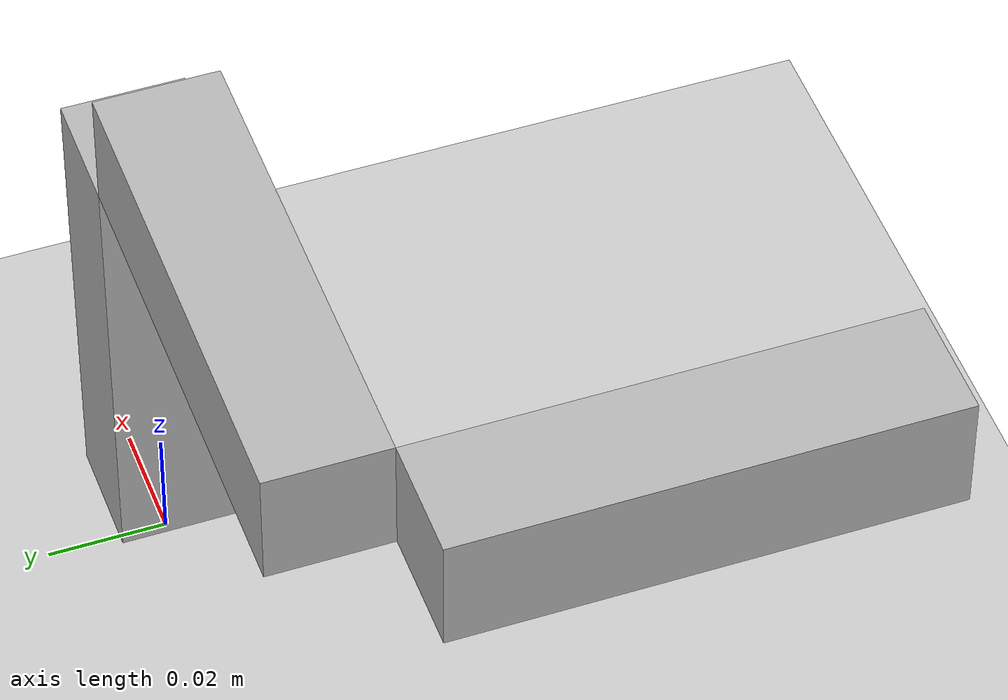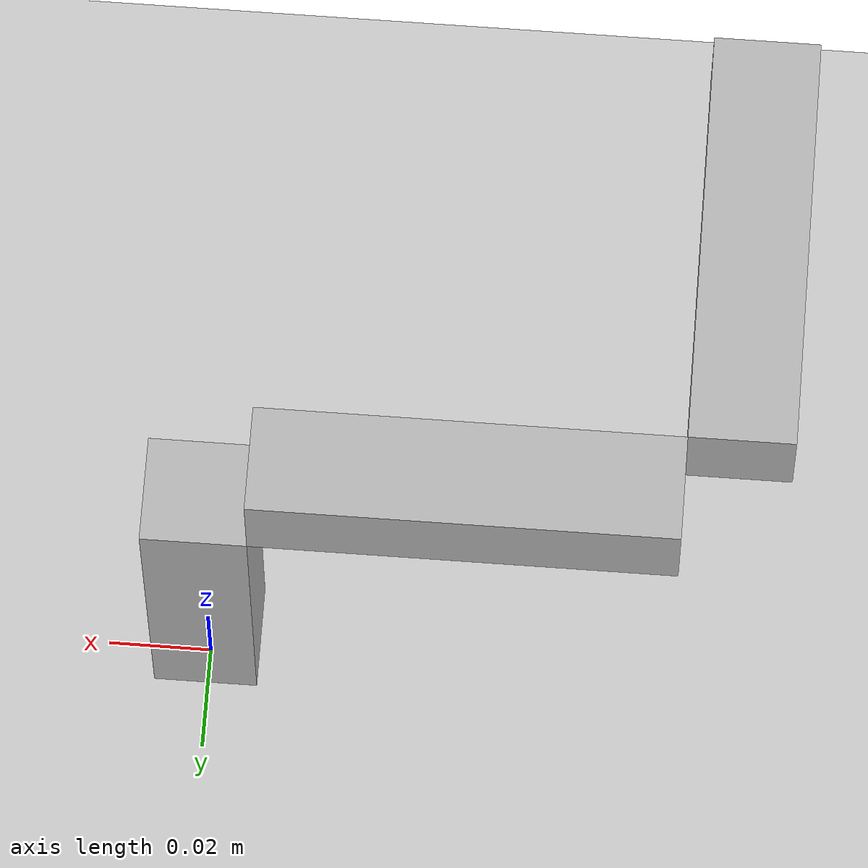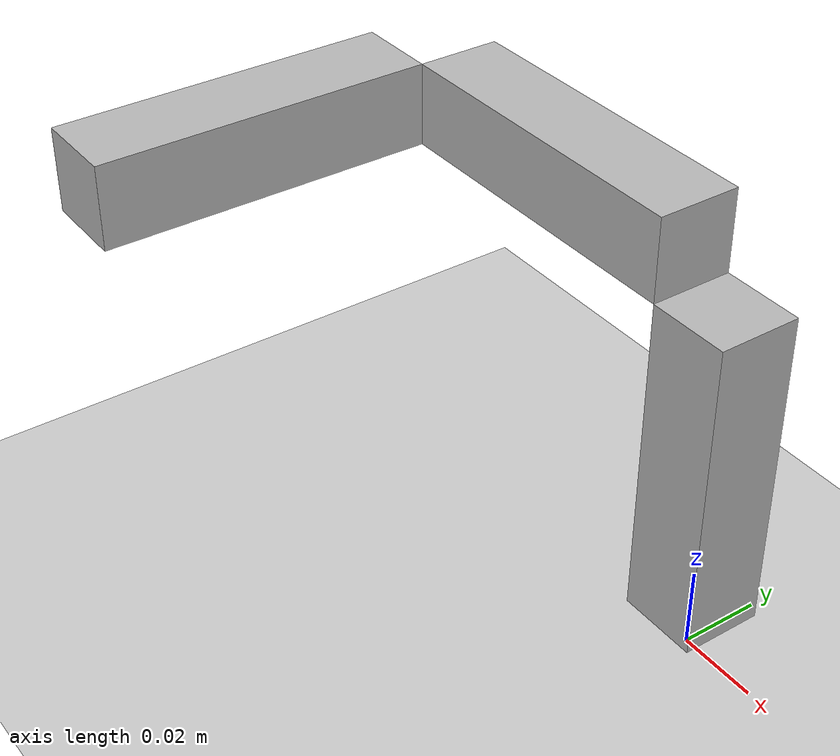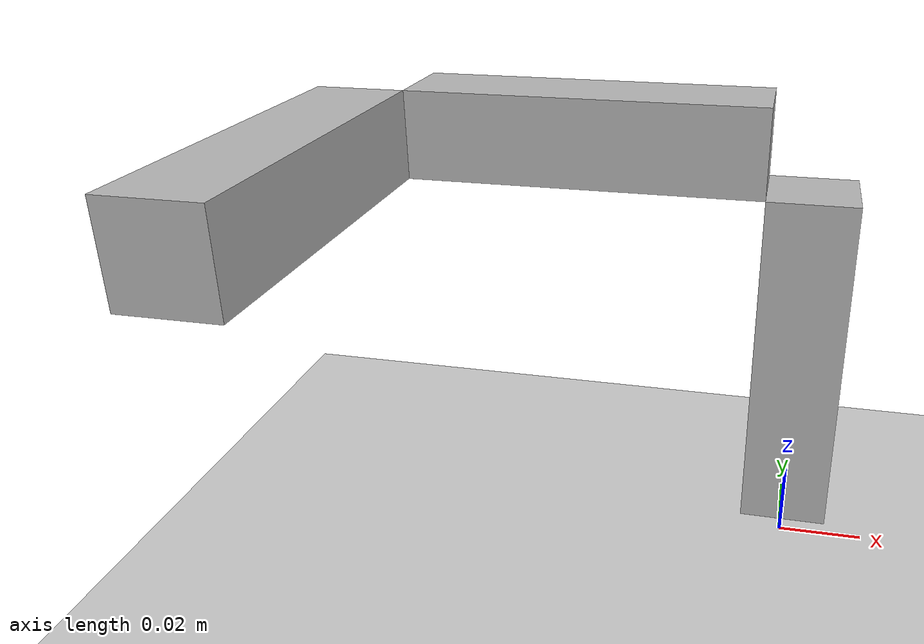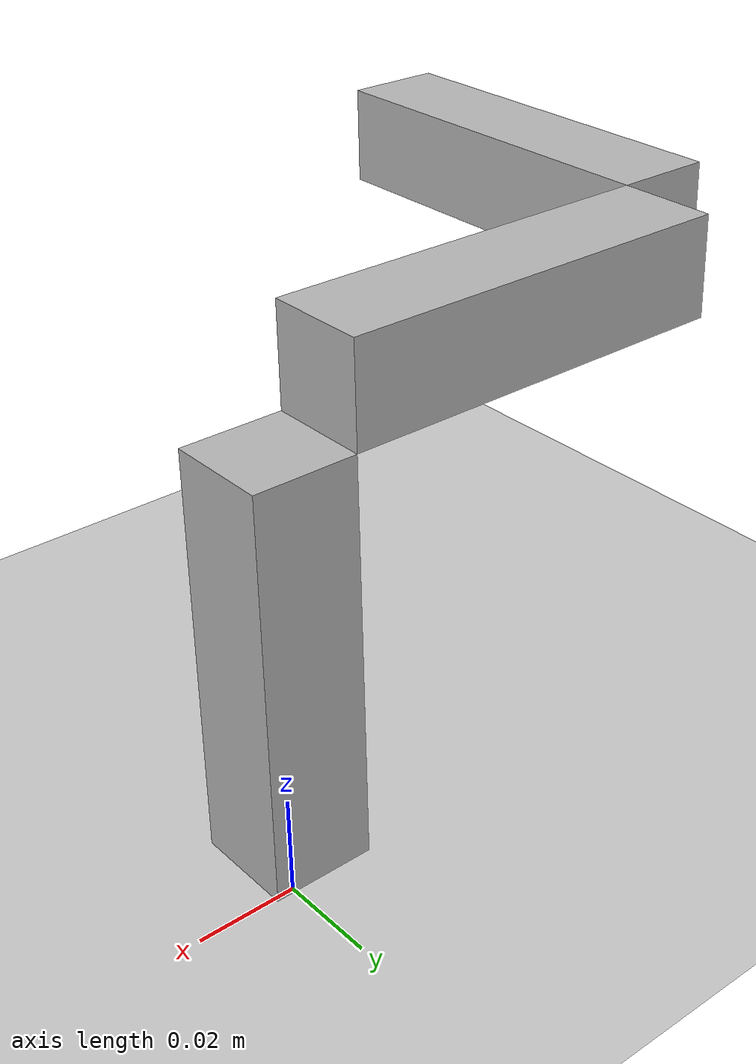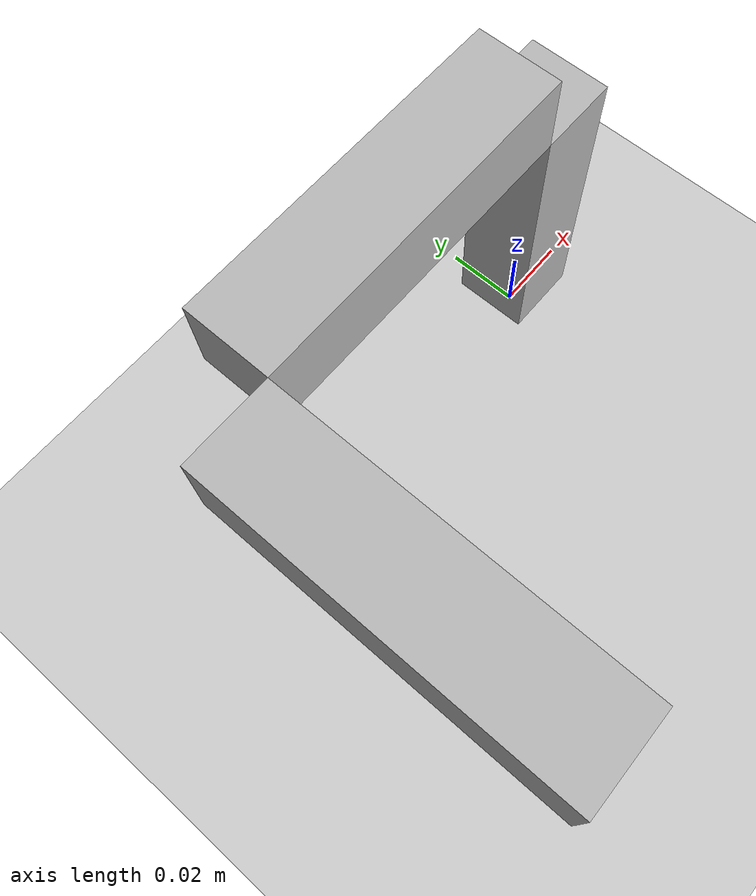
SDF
<sdf version='1.9'>
  <world name='default'>
    <!--Physics/scene settings-->
    <gravity>0 0 -9.8</gravity>
    <magnetic_field>5.5645e-6 22.8758e-6 -42.3884e-6</magnetic_field>
    <atmosphere type='adiabatic'/>
    <physics type='ode'>
      <max_step_size>0.001</max_step_size>
      <real_time_factor>1.0</real_time_factor>
      <real_time_update_rate>1000</real_time_update_rate>
    </physics>
    <scene>
      <ambient>0.4 0.4 0.4 1.0</ambient>
      <background>.7 .7 .7 1</background>
      <shadows>true</shadows>
    </scene>

    <!--System Plugins-->
    <plugin filename='ignition-gazebo-physics-system' name='ignition::gazebo::systems::Physics'>
    </plugin>
    <plugin filename='ignition-gazebo-user-commands-system' name='ignition::gazebo::systems::UserCommands'>
    </plugin>
    <plugin filename='ignition-gazebo-scene-broadcaster-system' name='ignition::gazebo::systems::SceneBroadcaster'>
    </plugin>
    <plugin filename='ignition-gazebo-sensors-system' name='ignition::gazebo::systems::Sensors'>
      <render_engine>ogre2</render_engine>
    </plugin>
    <plugin filename='ignition-gazebo-contact-system' name='ignition::gazebo::systems::Contact'>
    </plugin>
    <plugin filename="ignition-gazebo-forcetorque-system" name="ignition::gazebo::systems::ForceTorque">
    </plugin>
    <plugin filename="libignition-gazebo-imu-system.so" name="ignition::gazebo::systems::Imu">
    </plugin>

    <!--Add world models-->
    <light type='directional' name='sun'>
      <cast_shadows>true</cast_shadows>
      <pose>0 0 10 0 0 0</pose>
      <diffuse>0.8 0.8 0.8 1</diffuse>
      <specular>0.2 0.2 0.2 1</specular>
      <attenuation>
        <range>1000</range>
        <constant>0.9</constant>
        <linear>0.01</linear>
        <quadratic>0.001</quadratic>
      </attenuation>
      <direction>-0.5 0.1 -0.9</direction>
    </light>
    <model name='ground_plane'>
      <static>1</static>
      <link name='link'>
        <collision name='collision'>
          <geometry>
            <plane>
              <normal>0 0 1</normal>
            </plane>
          </geometry>
        </collision>
        <visual name='visual'>
          <geometry>
            <plane>
              <normal>0 0 1</normal>
              <size>100 100</size>
            </plane>
          </geometry>
          <material>
            <ambient>0.8 0.8 0.8 1</ambient>
            <diffuse>0.8 0.8 0.8 1</diffuse>
            <specular>0.8 0.8 0.8 1</specular>
          </material>
        </visual>
      </link>
    </model>

    <!--Add stick model-->
    <model name='stick'>
      <joint name='world_fixed' type='fixed'>
        <parent>world</parent>
        <child>stick_link1</child>
      </joint>

      <!--Create stick example links-->
      <link name='stick_link1'>
        <inertial>
          <pose>0 0 0.05 0 0 0</pose>
          <mass>0.510204</mass>
          <inertia>
            <ixx>0.1</ixx>
            <ixy>0</ixy>
            <ixz>0</ixz>
            <iyy>0.1</iyy>
            <iyz>0</iyz>
            <izz>0.1</izz>
          </inertia>
        </inertial>
        <collision name='stick_link1_collision'>
          <pose>0 0 0.05 0 0 0</pose>
          <geometry>
            <box>
              <size>0.02 0.02 0.08</size>
            </box>
          </geometry>
        </collision>
        <visual name='stick_link1_visual'>
          <pose>0 0 0.05 0 0 0</pose>
          <geometry>
            <box>
              <size>0.02 0.02 0.08</size>
            </box>
          </geometry>
        </visual>
      </link>
      <link name='stick_link2'>
        <pose relative_to='stick_joint1'/>
        <inertial>
          <pose>0 0 0.05 0 0 0</pose>
          <mass>0.510204</mass>
          <inertia>
            <ixx>0.1</ixx>
            <ixy>0</ixy>
            <ixz>0</ixz>
            <iyy>0.1</iyy>
            <iyz>0</iyz>
            <izz>0.1</izz>
          </inertia>
        </inertial>
        <collision name='stick_link2_collision'>
          <pose>0 0 0.05 0 0 0</pose>
          <geometry>
            <box>
              <size>0.02 0.02 0.08</size>
            </box>
          </geometry>
        </collision>
        <visual name='stick_link2_visual'>
          <pose>0 0 0.05 0 0 0</pose>
          <geometry>
            <box>
              <size>0.02 0.02 0.08</size>
            </box>
          </geometry>
        </visual>
      </link>
      <link name='stick_link3'>
        <pose relative_to='stick_joint2'/>
        <inertial>
          <pose>0 0 0.05 0 0 0</pose>
          <mass>0.510204</mass>
          <inertia>
            <ixx>0.1</ixx>
            <ixy>0</ixy>
            <ixz>0</ixz>
            <iyy>0.1</iyy>
            <iyz>0</iyz>
            <izz>0.1</izz>
          </inertia>
        </inertial>
        <collision name='stick_link3_collision'>
          <pose>0 0 0.05 0 0 0</pose>
          <geometry>
            <box>
              <size>0.02 0.02 0.08</size>
            </box>
          </geometry>
        </collision>
        <visual name='stick_link3_visual'>
          <pose>0 0 0.05 0 0 0</pose>
          <geometry>
            <box>
              <size>0.02 0.02 0.08</size>
            </box>
          </geometry>
        </visual>
      </link>

      <!--Create stick joints-->
      <!--  Problem joint-->
      <joint name='stick_joint1' type='revolute'>
        <pose relative_to='stick_link1'>0 0 0.1 0 -1.5707963267948966 0</pose>
        <parent>stick_link1</parent>
        <child>stick_link2</child>
        <axis>
          <xyz>0 1 0</xyz>
          <limit>
            <lower>-2.9671</lower>
            <upper>2.9671</upper>
            <effort>87</effort>
            <velocity>2.5</velocity>
          </limit>
          <dynamics>
            <damping>0.003</damping>
            <friction>0</friction>
          </dynamics>
        </axis>

        <!--Joint torque sensor-->
        <sensor name="force_torque_sensor" type="force_torque">
          <always_on>true</always_on>
          <update_rate>50</update_rate>
          <visualize>true</visualize>
          <topic>stick_joint1/force_torque</topic>
          <force_torque>
            <!--NOTE: Sensor frame is parent frame if pose tag is not defined-->
            <frame>child</frame>
            <!--Flips torque and force.-->
            <measure_direction>child_to_parent</measure_direction>
          </force_torque>
        </sensor>
      </joint>
      <!--Joint1 position controller-->
      <plugin filename="ignition-gazebo-joint-position-controller-system" name="ignition::gazebo::systems::JointPositionController">
        <joint_name>stick_joint1</joint_name>
        <p_gain>600</p_gain>
        <i_gain>1.5</i_gain>
        <d_gain>25.0</d_gain>
        <i_max>1</i_max>
        <i_min>-1</i_min>
        <cmd_max>1000</cmd_max>
        <cmd_min>-1000</cmd_min>
      </plugin>
      <!--Joint1 state publisher-->
      <plugin filename="ignition-gazebo-joint-state-publisher-system" name="ignition::gazebo::systems::JointStatePublisher">
        <joint_name>stick_joint1</joint_name>
        <topic>stick_joint1/joint_state</topic>
      </plugin>

      <!--  Weight joint-->
      <joint name='stick_joint2' type='revolute'>
        <pose relative_to='stick_link2'>0 0 0.1 1.5707963267948966 0 0</pose>
        <parent>stick_link2</parent>
        <child>stick_link3</child>
        <axis>
          <xyz>0 0 1</xyz>
          <limit>
            <lower>-2.9671</lower>
            <upper>2.9671</upper>
            <effort>87</effort>
            <velocity>2.5</velocity>
          </limit>
          <dynamics>
            <damping>0.003</damping>
            <friction>0</friction>
          </dynamics>
        </axis>

        <!--Joint2 torque sensor-->
        <sensor name="force_torque_sensor" type="force_torque">
          <always_on>true</always_on>
          <update_rate>50</update_rate>
          <visualize>true</visualize>
          <topic>stick_joint2/force_torque</topic>
          <force_torque>
            <!--NOTE: Sensor frame is parent frame if pose tag is not defined-->
            <frame>child</frame>
            <!--Flips torque and force.-->
            <measure_direction>child_to_parent</measure_direction>
          </force_torque>
        </sensor>
      </joint>
      <!--Joint2 position controller-->
      <plugin filename="ignition-gazebo-joint-position-controller-system" name="ignition::gazebo::systems::JointPositionController">
        <joint_name>stick_joint2</joint_name>
        <p_gain>450</p_gain>
        <i_gain>1.5</i_gain>
        <d_gain>25.0</d_gain>
        <i_max>1</i_max>
        <i_min>-1</i_min>
        <cmd_max>1000</cmd_max>
        <cmd_min>-1000</cmd_min>
      </plugin>
      <!--Joint2 state publisher-->
      <plugin filename="ignition-gazebo-joint-state-publisher-system" name="ignition::gazebo::systems::JointStatePublisher">
        <joint_name>stick_joint2</joint_name>
        <topic>stick_joint2/joint_state</topic>
      </plugin>
    </model>
  </world>
</sdf>
